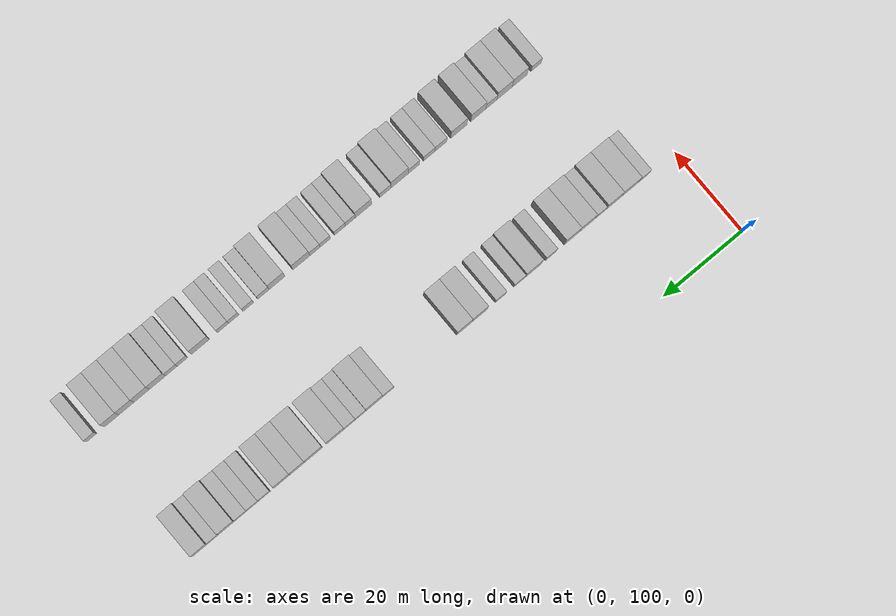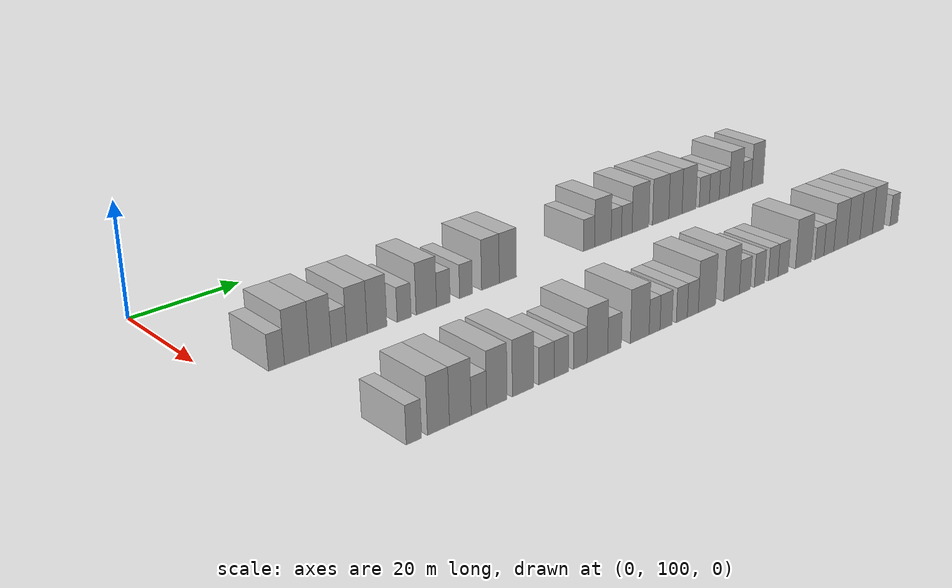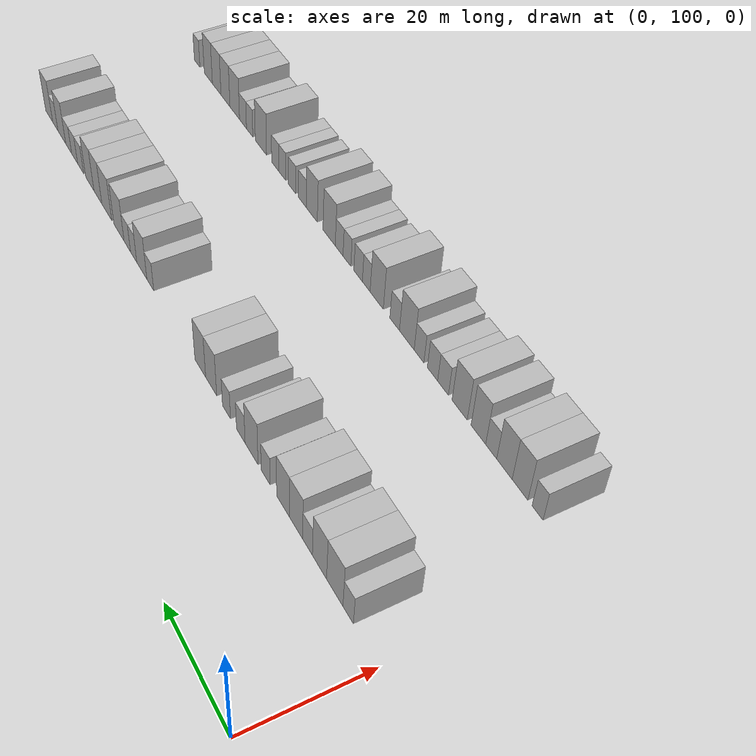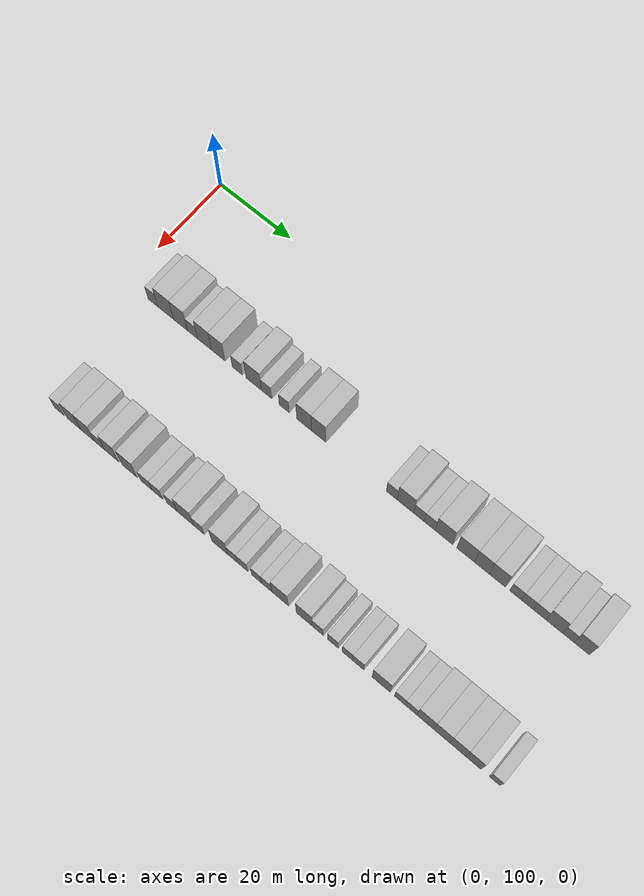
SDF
<sdf version="1.6">
 <world name="default">
  <model name="building_86">
   <static>1</static>
   <pose>25.0000 107.9559 0 0.000000 0.000000 0.000000</pose>
   <link name="link">
    <pose>0 0 3.00 0 0 0</pose>
    <collision name="collision"><geometry><box><size>10.0000 2.7515 6.0000</size></box></geometry></collision>
    <visual name="visual">
     <cast_shadows>0</cast_shadows>
     <geometry><box><size>10.0000 2.7515 6.0000</size></box></geometry>
     <material>
      <script>
       <uri>model://HANNAS_wall/materials/scripts</uri>
       <uri>model://HANNAS_wall/materials/textures</uri>
       <name>vrc/HANNAS_wall</name>
      </script>
     </material>
    </visual>
   </link>
  </model>
  <model name="building_87">
   <static>1</static>
   <pose>25.0000 111.5429 0 0.000000 0.000000 0.000000</pose>
   <link name="link">
    <pose>0 0 4.50 0 0 0</pose>
    <collision name="collision"><geometry><box><size>10.0000 4.4225 9.0000</size></box></geometry></collision>
    <visual name="visual">
     <cast_shadows>0</cast_shadows>
     <geometry><box><size>10.0000 4.4225 9.0000</size></box></geometry>
     <material>
      <script>
       <uri>model://HANNAS_wall/materials/scripts</uri>
       <uri>model://HANNAS_wall/materials/textures</uri>
       <name>vrc/HANNAS_wall</name>
      </script>
     </material>
    </visual>
   </link>
  </model>
  <model name="building_88">
   <static>1</static>
   <pose>25.0000 115.7220 0 0.000000 0.000000 0.000000</pose>
   <link name="link">
    <pose>0 0 4.50 0 0 0</pose>
    <collision name="collision"><geometry><box><size>10.0000 3.9358 9.0000</size></box></geometry></collision>
    <visual name="visual">
     <cast_shadows>0</cast_shadows>
     <geometry><box><size>10.0000 3.9358 9.0000</size></box></geometry>
     <material>
      <script>
       <uri>model://HANNAS_wall/materials/scripts</uri>
       <uri>model://HANNAS_wall/materials/textures</uri>
       <name>vrc/HANNAS_wall</name>
      </script>
     </material>
    </visual>
   </link>
  </model>
  <model name="building_89">
   <static>1</static>
   <pose>25.0000 119.0922 0 0.000000 0.000000 0.000000</pose>
   <link name="link">
    <pose>0 0 3.00 0 0 0</pose>
    <collision name="collision"><geometry><box><size>10.0000 2.8045 6.0000</size></box></geometry></collision>
    <visual name="visual">
     <cast_shadows>0</cast_shadows>
     <geometry><box><size>10.0000 2.8045 6.0000</size></box></geometry>
     <material>
      <script>
       <uri>model://HANNAS_wall/materials/scripts</uri>
       <uri>model://HANNAS_wall/materials/textures</uri>
       <name>vrc/HANNAS_wall</name>
      </script>
     </material>
    </visual>
   </link>
  </model>
  <model name="building_90">
   <static>1</static>
   <pose>25.0000 122.4397 0 0.000000 0.000000 0.000000</pose>
   <link name="link">
    <pose>0 0 4.50 0 0 0</pose>
    <collision name="collision"><geometry><box><size>10.0000 3.8905 9.0000</size></box></geometry></collision>
    <visual name="visual">
     <cast_shadows>0</cast_shadows>
     <geometry><box><size>10.0000 3.8905 9.0000</size></box></geometry>
     <material>
      <script>
       <uri>model://HANNAS_wall/materials/scripts</uri>
       <uri>model://HANNAS_wall/materials/textures</uri>
       <name>vrc/HANNAS_wall</name>
      </script>
     </material>
    </visual>
   </link>
  </model>
  <model name="building_91">
   <static>1</static>
   <pose>25.0000 126.2762 0 0.000000 0.000000 0.000000</pose>
   <link name="link">
    <pose>0 0 4.50 0 0 0</pose>
    <collision name="collision"><geometry><box><size>10.0000 3.7825 9.0000</size></box></geometry></collision>
    <visual name="visual">
     <cast_shadows>0</cast_shadows>
     <geometry><box><size>10.0000 3.7825 9.0000</size></box></geometry>
     <material>
      <script>
       <uri>model://HANNAS_wall/materials/scripts</uri>
       <uri>model://HANNAS_wall/materials/textures</uri>
       <name>vrc/HANNAS_wall</name>
      </script>
     </material>
    </visual>
   </link>
  </model>
  <model name="building_92">
   <static>1</static>
   <pose>25.0000 131.5565 0 0.000000 0.000000 0.000000</pose>
   <link name="link">
    <pose>0 0 3.00 0 0 0</pose>
    <collision name="collision"><geometry><box><size>10.0000 2.7782 6.0000</size></box></geometry></collision>
    <visual name="visual">
     <cast_shadows>0</cast_shadows>
     <geometry><box><size>10.0000 2.7782 6.0000</size></box></geometry>
     <material>
      <script>
       <uri>model://HANNAS_wall/materials/scripts</uri>
       <uri>model://HANNAS_wall/materials/textures</uri>
       <name>vrc/HANNAS_wall</name>
      </script>
     </material>
    </visual>
   </link>
  </model>
  <model name="building_93">
   <static>1</static>
   <pose>25.0000 136.0225 0 0.000000 0.000000 0.000000</pose>
   <link name="link">
    <pose>0 0 4.50 0 0 0</pose>
    <collision name="collision"><geometry><box><size>10.0000 4.1538 9.0000</size></box></geometry></collision>
    <visual name="visual">
     <cast_shadows>0</cast_shadows>
     <geometry><box><size>10.0000 4.1538 9.0000</size></box></geometry>
     <material>
      <script>
       <uri>model://HANNAS_wall/materials/scripts</uri>
       <uri>model://HANNAS_wall/materials/textures</uri>
       <name>vrc/HANNAS_wall</name>
      </script>
     </material>
    </visual>
   </link>
  </model>
  <model name="building_94">
   <static>1</static>
   <pose>25.0000 139.5104 0 0.000000 0.000000 0.000000</pose>
   <link name="link">
    <pose>0 0 3.00 0 0 0</pose>
    <collision name="collision"><geometry><box><size>10.0000 2.8219 6.0000</size></box></geometry></collision>
    <visual name="visual">
     <cast_shadows>0</cast_shadows>
     <geometry><box><size>10.0000 2.8219 6.0000</size></box></geometry>
     <material>
      <script>
       <uri>model://HANNAS_wall/materials/scripts</uri>
       <uri>model://HANNAS_wall/materials/textures</uri>
       <name>vrc/HANNAS_wall</name>
      </script>
     </material>
    </visual>
   </link>
  </model>
  <model name="building_95">
   <static>1</static>
   <pose>25.0000 144.2743 0 0.000000 0.000000 0.000000</pose>
   <link name="link">
    <pose>0 0 3.00 0 0 0</pose>
    <collision name="collision"><geometry><box><size>10.0000 2.7059 6.0000</size></box></geometry></collision>
    <visual name="visual">
     <cast_shadows>0</cast_shadows>
     <geometry><box><size>10.0000 2.7059 6.0000</size></box></geometry>
     <material>
      <script>
       <uri>model://HANNAS_wall/materials/scripts</uri>
       <uri>model://HANNAS_wall/materials/textures</uri>
       <name>vrc/HANNAS_wall</name>
      </script>
     </material>
    </visual>
   </link>
  </model>
  <model name="building_96">
   <static>1</static>
   <pose>25.0000 149.5697 0 0.000000 0.000000 0.000000</pose>
   <link name="link">
    <pose>0 0 4.50 0 0 0</pose>
    <collision name="collision"><geometry><box><size>10.0000 3.8850 9.0000</size></box></geometry></collision>
    <visual name="visual">
     <cast_shadows>0</cast_shadows>
     <geometry><box><size>10.0000 3.8850 9.0000</size></box></geometry>
     <material>
      <script>
       <uri>model://HANNAS_wall/materials/scripts</uri>
       <uri>model://HANNAS_wall/materials/textures</uri>
       <name>vrc/HANNAS_wall</name>
      </script>
     </material>
    </visual>
   </link>
  </model>
  <model name="building_97">
   <static>1</static>
   <pose>25.0000 153.4449 0 0.000000 0.000000 0.000000</pose>
   <link name="link">
    <pose>0 0 4.50 0 0 0</pose>
    <collision name="collision"><geometry><box><size>10.0000 3.8653 9.0000</size></box></geometry></collision>
    <visual name="visual">
     <cast_shadows>0</cast_shadows>
     <geometry><box><size>10.0000 3.8653 9.0000</size></box></geometry>
     <material>
      <script>
       <uri>model://HANNAS_wall/materials/scripts</uri>
       <uri>model://HANNAS_wall/materials/textures</uri>
       <name>vrc/HANNAS_wall</name>
      </script>
     </material>
    </visual>
   </link>
  </model>
  <model name="building_98">
   <static>1</static>
   <pose>25.0000 172.5586 0 0.000000 0.000000 0.000000</pose>
   <link name="link">
    <pose>0 0 3.00 0 0 0</pose>
    <collision name="collision"><geometry><box><size>10.0000 2.7874 6.0000</size></box></geometry></collision>
    <visual name="visual">
     <cast_shadows>0</cast_shadows>
     <geometry><box><size>10.0000 2.7874 6.0000</size></box></geometry>
     <material>
      <script>
       <uri>model://HANNAS_wall/materials/scripts</uri>
       <uri>model://HANNAS_wall/materials/textures</uri>
       <name>vrc/HANNAS_wall</name>
      </script>
     </material>
    </visual>
   </link>
  </model>
  <model name="building_99">
   <static>1</static>
   <pose>25.0000 176.0475 0 0.000000 0.000000 0.000000</pose>
   <link name="link">
    <pose>0 0 4.50 0 0 0</pose>
    <collision name="collision"><geometry><box><size>10.0000 4.1904 9.0000</size></box></geometry></collision>
    <visual name="visual">
     <cast_shadows>0</cast_shadows>
     <geometry><box><size>10.0000 4.1904 9.0000</size></box></geometry>
     <material>
      <script>
       <uri>model://HANNAS_wall/materials/scripts</uri>
       <uri>model://HANNAS_wall/materials/textures</uri>
       <name>vrc/HANNAS_wall</name>
      </script>
     </material>
    </visual>
   </link>
  </model>
  <model name="building_100">
   <static>1</static>
   <pose>25.0000 179.4709 0 0.000000 0.000000 0.000000</pose>
   <link name="link">
    <pose>0 0 3.00 0 0 0</pose>
    <collision name="collision"><geometry><box><size>10.0000 2.6563 6.0000</size></box></geometry></collision>
    <visual name="visual">
     <cast_shadows>0</cast_shadows>
     <geometry><box><size>10.0000 2.6563 6.0000</size></box></geometry>
     <material>
      <script>
       <uri>model://HANNAS_wall/materials/scripts</uri>
       <uri>model://HANNAS_wall/materials/textures</uri>
       <name>vrc/HANNAS_wall</name>
      </script>
     </material>
    </visual>
   </link>
  </model>
  <model name="building_101">
   <static>1</static>
   <pose>25.0000 182.1875 0 0.000000 0.000000 0.000000</pose>
   <link name="link">
    <pose>0 0 3.00 0 0 0</pose>
    <collision name="collision"><geometry><box><size>10.0000 2.7770 6.0000</size></box></geometry></collision>
    <visual name="visual">
     <cast_shadows>0</cast_shadows>
     <geometry><box><size>10.0000 2.7770 6.0000</size></box></geometry>
     <material>
      <script>
       <uri>model://HANNAS_wall/materials/scripts</uri>
       <uri>model://HANNAS_wall/materials/textures</uri>
       <name>vrc/HANNAS_wall</name>
      </script>
     </material>
    </visual>
   </link>
  </model>
  <model name="building_102">
   <static>1</static>
   <pose>25.0000 185.7847 0 0.000000 0.000000 0.000000</pose>
   <link name="link">
    <pose>0 0 4.50 0 0 0</pose>
    <collision name="collision"><geometry><box><size>10.0000 4.4173 9.0000</size></box></geometry></collision>
    <visual name="visual">
     <cast_shadows>0</cast_shadows>
     <geometry><box><size>10.0000 4.4173 9.0000</size></box></geometry>
     <material>
      <script>
       <uri>model://HANNAS_wall/materials/scripts</uri>
       <uri>model://HANNAS_wall/materials/textures</uri>
       <name>vrc/HANNAS_wall</name>
      </script>
     </material>
    </visual>
   </link>
  </model>
  <model name="building_103">
   <static>1</static>
   <pose>25.0000 191.2143 0 0.000000 0.000000 0.000000</pose>
   <link name="link">
    <pose>0 0 4.50 0 0 0</pose>
    <collision name="collision"><geometry><box><size>10.0000 4.4419 9.0000</size></box></geometry></collision>
    <visual name="visual">
     <cast_shadows>0</cast_shadows>
     <geometry><box><size>10.0000 4.4419 9.0000</size></box></geometry>
     <material>
      <script>
       <uri>model://HANNAS_wall/materials/scripts</uri>
       <uri>model://HANNAS_wall/materials/textures</uri>
       <name>vrc/HANNAS_wall</name>
      </script>
     </material>
    </visual>
   </link>
  </model>
  <model name="building_104">
   <static>1</static>
   <pose>25.0000 195.2744 0 0.000000 0.000000 0.000000</pose>
   <link name="link">
    <pose>0 0 4.50 0 0 0</pose>
    <collision name="collision"><geometry><box><size>10.0000 3.6783 9.0000</size></box></geometry></collision>
    <visual name="visual">
     <cast_shadows>0</cast_shadows>
     <geometry><box><size>10.0000 3.6783 9.0000</size></box></geometry>
     <material>
      <script>
       <uri>model://HANNAS_wall/materials/scripts</uri>
       <uri>model://HANNAS_wall/materials/textures</uri>
       <name>vrc/HANNAS_wall</name>
      </script>
     </material>
    </visual>
   </link>
  </model>
  <model name="building_105">
   <static>1</static>
   <pose>25.0000 199.0758 0 0.000000 0.000000 0.000000</pose>
   <link name="link">
    <pose>0 0 4.50 0 0 0</pose>
    <collision name="collision"><geometry><box><size>10.0000 3.9245 9.0000</size></box></geometry></collision>
    <visual name="visual">
     <cast_shadows>0</cast_shadows>
     <geometry><box><size>10.0000 3.9245 9.0000</size></box></geometry>
     <material>
      <script>
       <uri>model://HANNAS_wall/materials/scripts</uri>
       <uri>model://HANNAS_wall/materials/textures</uri>
       <name>vrc/HANNAS_wall</name>
      </script>
     </material>
    </visual>
   </link>
  </model>
  <model name="building_106">
   <static>1</static>
   <pose>25.0000 203.4934 0 0.000000 0.000000 0.000000</pose>
   <link name="link">
    <pose>0 0 3.00 0 0 0</pose>
    <collision name="collision"><geometry><box><size>10.0000 2.9106 6.0000</size></box></geometry></collision>
    <visual name="visual">
     <cast_shadows>0</cast_shadows>
     <geometry><box><size>10.0000 2.9106 6.0000</size></box></geometry>
     <material>
      <script>
       <uri>model://HANNAS_wall/materials/scripts</uri>
       <uri>model://HANNAS_wall/materials/textures</uri>
       <name>vrc/HANNAS_wall</name>
      </script>
     </material>
    </visual>
   </link>
  </model>
  <model name="building_107">
   <static>1</static>
   <pose>25.0000 206.4022 0 0.000000 0.000000 0.000000</pose>
   <link name="link">
    <pose>0 0 3.00 0 0 0</pose>
    <collision name="collision"><geometry><box><size>10.0000 2.9070 6.0000</size></box></geometry></collision>
    <visual name="visual">
     <cast_shadows>0</cast_shadows>
     <geometry><box><size>10.0000 2.9070 6.0000</size></box></geometry>
     <material>
      <script>
       <uri>model://HANNAS_wall/materials/scripts</uri>
       <uri>model://HANNAS_wall/materials/textures</uri>
       <name>vrc/HANNAS_wall</name>
      </script>
     </material>
    </visual>
   </link>
  </model>
  <model name="building_108">
   <static>1</static>
   <pose>25.0000 209.3434 0 0.000000 0.000000 0.000000</pose>
   <link name="link">
    <pose>0 0 3.00 0 0 0</pose>
    <collision name="collision"><geometry><box><size>10.0000 2.9755 6.0000</size></box></geometry></collision>
    <visual name="visual">
     <cast_shadows>0</cast_shadows>
     <geometry><box><size>10.0000 2.9755 6.0000</size></box></geometry>
     <material>
      <script>
       <uri>model://HANNAS_wall/materials/scripts</uri>
       <uri>model://HANNAS_wall/materials/textures</uri>
       <name>vrc/HANNAS_wall</name>
      </script>
     </material>
    </visual>
   </link>
  </model>
  <model name="building_109">
   <static>1</static>
   <pose>25.0000 212.8190 0 0.000000 0.000000 0.000000</pose>
   <link name="link">
    <pose>0 0 4.50 0 0 0</pose>
    <collision name="collision"><geometry><box><size>10.0000 3.9757 9.0000</size></box></geometry></collision>
    <visual name="visual">
     <cast_shadows>0</cast_shadows>
     <geometry><box><size>10.0000 3.9757 9.0000</size></box></geometry>
     <material>
      <script>
       <uri>model://HANNAS_wall/materials/scripts</uri>
       <uri>model://HANNAS_wall/materials/textures</uri>
       <name>vrc/HANNAS_wall</name>
      </script>
     </material>
    </visual>
   </link>
  </model>
  <model name="building_110">
   <static>1</static>
   <pose>25.0000 216.1886 0 0.000000 0.000000 0.000000</pose>
   <link name="link">
    <pose>0 0 3.00 0 0 0</pose>
    <collision name="collision"><geometry><box><size>10.0000 2.7635 6.0000</size></box></geometry></collision>
    <visual name="visual">
     <cast_shadows>0</cast_shadows>
     <geometry><box><size>10.0000 2.7635 6.0000</size></box></geometry>
     <material>
      <script>
       <uri>model://HANNAS_wall/materials/scripts</uri>
       <uri>model://HANNAS_wall/materials/textures</uri>
       <name>vrc/HANNAS_wall</name>
      </script>
     </material>
    </visual>
   </link>
  </model>
  <model name="building_111">
   <static>1</static>
   <pose>25.0000 219.4188 0 0.000000 0.000000 0.000000</pose>
   <link name="link">
    <pose>0 0 4.50 0 0 0</pose>
    <collision name="collision"><geometry><box><size>10.0000 3.6969 9.0000</size></box></geometry></collision>
    <visual name="visual">
     <cast_shadows>0</cast_shadows>
     <geometry><box><size>10.0000 3.6969 9.0000</size></box></geometry>
     <material>
      <script>
       <uri>model://HANNAS_wall/materials/scripts</uri>
       <uri>model://HANNAS_wall/materials/textures</uri>
       <name>vrc/HANNAS_wall</name>
      </script>
     </material>
    </visual>
   </link>
  </model>
  <model name="building_196">
   <static>1</static>
   <pose>55.0000 109.9472 0 0.000000 0.000000 0.000000</pose>
   <link name="link">
    <pose>0 0 3.00 0 0 0</pose>
    <collision name="collision"><geometry><box><size>10.0000 2.5874 6.0000</size></box></geometry></collision>
    <visual name="visual">
     <cast_shadows>0</cast_shadows>
     <geometry><box><size>10.0000 2.5874 6.0000</size></box></geometry>
     <material>
      <script>
       <uri>model://HANNAS_wall/materials/scripts</uri>
       <uri>model://HANNAS_wall/materials/textures</uri>
       <name>vrc/HANNAS_wall</name>
      </script>
     </material>
    </visual>
   </link>
  </model>
  <model name="building_197">
   <static>1</static>
   <pose>55.0000 114.1457 0 0.000000 0.000000 0.000000</pose>
   <link name="link">
    <pose>0 0 4.50 0 0 0</pose>
    <collision name="collision"><geometry><box><size>10.0000 3.8095 9.0000</size></box></geometry></collision>
    <visual name="visual">
     <cast_shadows>0</cast_shadows>
     <geometry><box><size>10.0000 3.8095 9.0000</size></box></geometry>
     <material>
      <script>
       <uri>model://HANNAS_wall/materials/scripts</uri>
       <uri>model://HANNAS_wall/materials/textures</uri>
       <name>vrc/HANNAS_wall</name>
      </script>
     </material>
    </visual>
   </link>
  </model>
  <model name="building_198">
   <static>1</static>
   <pose>55.0000 117.9830 0 0.000000 0.000000 0.000000</pose>
   <link name="link">
    <pose>0 0 4.50 0 0 0</pose>
    <collision name="collision"><geometry><box><size>10.0000 3.8651 9.0000</size></box></geometry></collision>
    <visual name="visual">
     <cast_shadows>0</cast_shadows>
     <geometry><box><size>10.0000 3.8651 9.0000</size></box></geometry>
     <material>
      <script>
       <uri>model://HANNAS_wall/materials/scripts</uri>
       <uri>model://HANNAS_wall/materials/textures</uri>
       <name>vrc/HANNAS_wall</name>
      </script>
     </material>
    </visual>
   </link>
  </model>
  <model name="building_199">
   <static>1</static>
   <pose>55.0000 121.3220 0 0.000000 0.000000 0.000000</pose>
   <link name="link">
    <pose>0 0 3.00 0 0 0</pose>
    <collision name="collision"><geometry><box><size>10.0000 2.8130 6.0000</size></box></geometry></collision>
    <visual name="visual">
     <cast_shadows>0</cast_shadows>
     <geometry><box><size>10.0000 2.8130 6.0000</size></box></geometry>
     <material>
      <script>
       <uri>model://HANNAS_wall/materials/scripts</uri>
       <uri>model://HANNAS_wall/materials/textures</uri>
       <name>vrc/HANNAS_wall</name>
      </script>
     </material>
    </visual>
   </link>
  </model>
  <model name="building_200">
   <static>1</static>
   <pose>55.0000 124.6306 0 0.000000 0.000000 0.000000</pose>
   <link name="link">
    <pose>0 0 4.50 0 0 0</pose>
    <collision name="collision"><geometry><box><size>10.0000 3.8042 9.0000</size></box></geometry></collision>
    <visual name="visual">
     <cast_shadows>0</cast_shadows>
     <geometry><box><size>10.0000 3.8042 9.0000</size></box></geometry>
     <material>
      <script>
       <uri>model://HANNAS_wall/materials/scripts</uri>
       <uri>model://HANNAS_wall/materials/textures</uri>
       <name>vrc/HANNAS_wall</name>
      </script>
     </material>
    </visual>
   </link>
  </model>
  <model name="building_201">
   <static>1</static>
   <pose>55.0000 129.5823 0 0.000000 0.000000 0.000000</pose>
   <link name="link">
    <pose>0 0 4.50 0 0 0</pose>
    <collision name="collision"><geometry><box><size>10.0000 4.0993 9.0000</size></box></geometry></collision>
    <visual name="visual">
     <cast_shadows>0</cast_shadows>
     <geometry><box><size>10.0000 4.0993 9.0000</size></box></geometry>
     <material>
      <script>
       <uri>model://HANNAS_wall/materials/scripts</uri>
       <uri>model://HANNAS_wall/materials/textures</uri>
       <name>vrc/HANNAS_wall</name>
      </script>
     </material>
    </visual>
   </link>
  </model>
  <model name="building_202">
   <static>1</static>
   <pose>55.0000 134.1253 0 0.000000 0.000000 0.000000</pose>
   <link name="link">
    <pose>0 0 3.00 0 0 0</pose>
    <collision name="collision"><geometry><box><size>10.0000 2.9866 6.0000</size></box></geometry></collision>
    <visual name="visual">
     <cast_shadows>0</cast_shadows>
     <geometry><box><size>10.0000 2.9866 6.0000</size></box></geometry>
     <material>
      <script>
       <uri>model://HANNAS_wall/materials/scripts</uri>
       <uri>model://HANNAS_wall/materials/textures</uri>
       <name>vrc/HANNAS_wall</name>
      </script>
     </material>
    </visual>
   </link>
  </model>
  <model name="building_203">
   <static>1</static>
   <pose>55.0000 137.0734 0 0.000000 0.000000 0.000000</pose>
   <link name="link">
    <pose>0 0 3.00 0 0 0</pose>
    <collision name="collision"><geometry><box><size>10.0000 2.9096 6.0000</size></box></geometry></collision>
    <visual name="visual">
     <cast_shadows>0</cast_shadows>
     <geometry><box><size>10.0000 2.9096 6.0000</size></box></geometry>
     <material>
      <script>
       <uri>model://HANNAS_wall/materials/scripts</uri>
       <uri>model://HANNAS_wall/materials/textures</uri>
       <name>vrc/HANNAS_wall</name>
      </script>
     </material>
    </visual>
   </link>
  </model>
  <model name="building_204">
   <static>1</static>
   <pose>55.0000 140.9360 0 0.000000 0.000000 0.000000</pose>
   <link name="link">
    <pose>0 0 3.00 0 0 0</pose>
    <collision name="collision"><geometry><box><size>10.0000 2.8154 6.0000</size></box></geometry></collision>
    <visual name="visual">
     <cast_shadows>0</cast_shadows>
     <geometry><box><size>10.0000 2.8154 6.0000</size></box></geometry>
     <material>
      <script>
       <uri>model://HANNAS_wall/materials/scripts</uri>
       <uri>model://HANNAS_wall/materials/textures</uri>
       <name>vrc/HANNAS_wall</name>
      </script>
     </material>
    </visual>
   </link>
  </model>
  <model name="building_205">
   <static>1</static>
   <pose>55.0000 144.5296 0 0.000000 0.000000 0.000000</pose>
   <link name="link">
    <pose>0 0 4.50 0 0 0</pose>
    <collision name="collision"><geometry><box><size>10.0000 4.3719 9.0000</size></box></geometry></collision>
    <visual name="visual">
     <cast_shadows>0</cast_shadows>
     <geometry><box><size>10.0000 4.3719 9.0000</size></box></geometry>
     <material>
      <script>
       <uri>model://HANNAS_wall/materials/scripts</uri>
       <uri>model://HANNAS_wall/materials/textures</uri>
       <name>vrc/HANNAS_wall</name>
      </script>
     </material>
    </visual>
   </link>
  </model>
  <model name="building_206">
   <static>1</static>
   <pose>55.0000 148.1737 0 0.000000 0.000000 0.000000</pose>
   <link name="link">
    <pose>0 0 3.00 0 0 0</pose>
    <collision name="collision"><geometry><box><size>10.0000 2.9163 6.0000</size></box></geometry></collision>
    <visual name="visual">
     <cast_shadows>0</cast_shadows>
     <geometry><box><size>10.0000 2.9163 6.0000</size></box></geometry>
     <material>
      <script>
       <uri>model://HANNAS_wall/materials/scripts</uri>
       <uri>model://HANNAS_wall/materials/textures</uri>
       <name>vrc/HANNAS_wall</name>
      </script>
     </material>
    </visual>
   </link>
  </model>
  <model name="building_207">
   <static>1</static>
   <pose>55.0000 153.7142 0 0.000000 0.000000 0.000000</pose>
   <link name="link">
    <pose>0 0 4.50 0 0 0</pose>
    <collision name="collision"><geometry><box><size>10.0000 4.1648 9.0000</size></box></geometry></collision>
    <visual name="visual">
     <cast_shadows>0</cast_shadows>
     <geometry><box><size>10.0000 4.1648 9.0000</size></box></geometry>
     <material>
      <script>
       <uri>model://HANNAS_wall/materials/scripts</uri>
       <uri>model://HANNAS_wall/materials/textures</uri>
       <name>vrc/HANNAS_wall</name>
      </script>
     </material>
    </visual>
   </link>
  </model>
  <model name="building_208">
   <static>1</static>
   <pose>55.0000 157.0342 0 0.000000 0.000000 0.000000</pose>
   <link name="link">
    <pose>0 0 3.00 0 0 0</pose>
    <collision name="collision"><geometry><box><size>10.0000 2.4753 6.0000</size></box></geometry></collision>
    <visual name="visual">
     <cast_shadows>0</cast_shadows>
     <geometry><box><size>10.0000 2.4753 6.0000</size></box></geometry>
     <material>
      <script>
       <uri>model://HANNAS_wall/materials/scripts</uri>
       <uri>model://HANNAS_wall/materials/textures</uri>
       <name>vrc/HANNAS_wall</name>
      </script>
     </material>
    </visual>
   </link>
  </model>
  <model name="building_209">
   <static>1</static>
   <pose>55.0000 159.6562 0 0.000000 0.000000 0.000000</pose>
   <link name="link">
    <pose>0 0 3.00 0 0 0</pose>
    <collision name="collision"><geometry><box><size>10.0000 2.7688 6.0000</size></box></geometry></collision>
    <visual name="visual">
     <cast_shadows>0</cast_shadows>
     <geometry><box><size>10.0000 2.7688 6.0000</size></box></geometry>
     <material>
      <script>
       <uri>model://HANNAS_wall/materials/scripts</uri>
       <uri>model://HANNAS_wall/materials/textures</uri>
       <name>vrc/HANNAS_wall</name>
      </script>
     </material>
    </visual>
   </link>
  </model>
  <model name="building_210">
   <static>1</static>
   <pose>55.0000 163.3407 0 0.000000 0.000000 0.000000</pose>
   <link name="link">
    <pose>0 0 3.00 0 0 0</pose>
    <collision name="collision"><geometry><box><size>10.0000 2.6002 6.0000</size></box></geometry></collision>
    <visual name="visual">
     <cast_shadows>0</cast_shadows>
     <geometry><box><size>10.0000 2.6002 6.0000</size></box></geometry>
     <material>
      <script>
       <uri>model://HANNAS_wall/materials/scripts</uri>
       <uri>model://HANNAS_wall/materials/textures</uri>
       <name>vrc/HANNAS_wall</name>
      </script>
     </material>
    </visual>
   </link>
  </model>
  <model name="building_211">
   <static>1</static>
   <pose>55.0000 165.9485 0 0.000000 0.000000 0.000000</pose>
   <link name="link">
    <pose>0 0 3.00 0 0 0</pose>
    <collision name="collision"><geometry><box><size>10.0000 2.6155 6.0000</size></box></geometry></collision>
    <visual name="visual">
     <cast_shadows>0</cast_shadows>
     <geometry><box><size>10.0000 2.6155 6.0000</size></box></geometry>
     <material>
      <script>
       <uri>model://HANNAS_wall/materials/scripts</uri>
       <uri>model://HANNAS_wall/materials/textures</uri>
       <name>vrc/HANNAS_wall</name>
      </script>
     </material>
    </visual>
   </link>
  </model>
  <model name="building_212">
   <static>1</static>
   <pose>55.0000 169.3770 0 0.000000 0.000000 0.000000</pose>
   <link name="link">
    <pose>0 0 4.50 0 0 0</pose>
    <collision name="collision"><geometry><box><size>10.0000 4.2416 9.0000</size></box></geometry></collision>
    <visual name="visual">
     <cast_shadows>0</cast_shadows>
     <geometry><box><size>10.0000 4.2416 9.0000</size></box></geometry>
     <material>
      <script>
       <uri>model://HANNAS_wall/materials/scripts</uri>
       <uri>model://HANNAS_wall/materials/textures</uri>
       <name>vrc/HANNAS_wall</name>
      </script>
     </material>
    </visual>
   </link>
  </model>
  <model name="building_213">
   <static>1</static>
   <pose>55.0000 175.4785 0 0.000000 0.000000 0.000000</pose>
   <link name="link">
    <pose>0 0 4.50 0 0 0</pose>
    <collision name="collision"><geometry><box><size>10.0000 3.9614 9.0000</size></box></geometry></collision>
    <visual name="visual">
     <cast_shadows>0</cast_shadows>
     <geometry><box><size>10.0000 3.9614 9.0000</size></box></geometry>
     <material>
      <script>
       <uri>model://HANNAS_wall/materials/scripts</uri>
       <uri>model://HANNAS_wall/materials/textures</uri>
       <name>vrc/HANNAS_wall</name>
      </script>
     </material>
    </visual>
   </link>
  </model>
  <model name="building_214">
   <static>1</static>
   <pose>55.0000 178.8935 0 0.000000 0.000000 0.000000</pose>
   <link name="link">
    <pose>0 0 3.00 0 0 0</pose>
    <collision name="collision"><geometry><box><size>10.0000 2.8687 6.0000</size></box></geometry></collision>
    <visual name="visual">
     <cast_shadows>0</cast_shadows>
     <geometry><box><size>10.0000 2.8687 6.0000</size></box></geometry>
     <material>
      <script>
       <uri>model://HANNAS_wall/materials/scripts</uri>
       <uri>model://HANNAS_wall/materials/textures</uri>
       <name>vrc/HANNAS_wall</name>
      </script>
     </material>
    </visual>
   </link>
  </model>
  <model name="building_215">
   <static>1</static>
   <pose>55.0000 182.6767 0 0.000000 0.000000 0.000000</pose>
   <link name="link">
    <pose>0 0 3.00 0 0 0</pose>
    <collision name="collision"><geometry><box><size>10.0000 2.6977 6.0000</size></box></geometry></collision>
    <visual name="visual">
     <cast_shadows>0</cast_shadows>
     <geometry><box><size>10.0000 2.6977 6.0000</size></box></geometry>
     <material>
      <script>
       <uri>model://HANNAS_wall/materials/scripts</uri>
       <uri>model://HANNAS_wall/materials/textures</uri>
       <name>vrc/HANNAS_wall</name>
      </script>
     </material>
    </visual>
   </link>
  </model>
  <model name="building_216">
   <static>1</static>
   <pose>55.0000 186.3125 0 0.000000 0.000000 0.000000</pose>
   <link name="link">
    <pose>0 0 3.00 0 0 0</pose>
    <collision name="collision"><geometry><box><size>10.0000 2.5738 6.0000</size></box></geometry></collision>
    <visual name="visual">
     <cast_shadows>0</cast_shadows>
     <geometry><box><size>10.0000 2.5738 6.0000</size></box></geometry>
     <material>
      <script>
       <uri>model://HANNAS_wall/materials/scripts</uri>
       <uri>model://HANNAS_wall/materials/textures</uri>
       <name>vrc/HANNAS_wall</name>
      </script>
     </material>
    </visual>
   </link>
  </model>
  <model name="building_217">
   <static>1</static>
   <pose>55.0000 189.0023 0 0.000000 0.000000 0.000000</pose>
   <link name="link">
    <pose>0 0 3.00 0 0 0</pose>
    <collision name="collision"><geometry><box><size>10.0000 2.8058 6.0000</size></box></geometry></collision>
    <visual name="visual">
     <cast_shadows>0</cast_shadows>
     <geometry><box><size>10.0000 2.8058 6.0000</size></box></geometry>
     <material>
      <script>
       <uri>model://HANNAS_wall/materials/scripts</uri>
       <uri>model://HANNAS_wall/materials/textures</uri>
       <name>vrc/HANNAS_wall</name>
      </script>
     </material>
    </visual>
   </link>
  </model>
  <model name="building_218">
   <static>1</static>
   <pose>55.0000 194.6379 0 0.000000 0.000000 0.000000</pose>
   <link name="link">
    <pose>0 0 4.50 0 0 0</pose>
    <collision name="collision"><geometry><box><size>10.0000 4.4655 9.0000</size></box></geometry></collision>
    <visual name="visual">
     <cast_shadows>0</cast_shadows>
     <geometry><box><size>10.0000 4.4655 9.0000</size></box></geometry>
     <material>
      <script>
       <uri>model://HANNAS_wall/materials/scripts</uri>
       <uri>model://HANNAS_wall/materials/textures</uri>
       <name>vrc/HANNAS_wall</name>
      </script>
     </material>
    </visual>
   </link>
  </model>
  <model name="building_219">
   <static>1</static>
   <pose>55.0000 199.1669 0 0.000000 0.000000 0.000000</pose>
   <link name="link">
    <pose>0 0 3.00 0 0 0</pose>
    <collision name="collision"><geometry><box><size>10.0000 2.5924 6.0000</size></box></geometry></collision>
    <visual name="visual">
     <cast_shadows>0</cast_shadows>
     <geometry><box><size>10.0000 2.5924 6.0000</size></box></geometry>
     <material>
      <script>
       <uri>model://HANNAS_wall/materials/scripts</uri>
       <uri>model://HANNAS_wall/materials/textures</uri>
       <name>vrc/HANNAS_wall</name>
      </script>
     </material>
    </visual>
   </link>
  </model>
  <model name="building_220">
   <static>1</static>
   <pose>55.0000 201.8923 0 0.000000 0.000000 0.000000</pose>
   <link name="link">
    <pose>0 0 3.00 0 0 0</pose>
    <collision name="collision"><geometry><box><size>10.0000 2.8583 6.0000</size></box></geometry></collision>
    <visual name="visual">
     <cast_shadows>0</cast_shadows>
     <geometry><box><size>10.0000 2.8583 6.0000</size></box></geometry>
     <material>
      <script>
       <uri>model://HANNAS_wall/materials/scripts</uri>
       <uri>model://HANNAS_wall/materials/textures</uri>
       <name>vrc/HANNAS_wall</name>
      </script>
     </material>
    </visual>
   </link>
  </model>
  <model name="building_221">
   <static>1</static>
   <pose>55.0000 205.3383 0 0.000000 0.000000 0.000000</pose>
   <link name="link">
    <pose>0 0 4.50 0 0 0</pose>
    <collision name="collision"><geometry><box><size>10.0000 4.0339 9.0000</size></box></geometry></collision>
    <visual name="visual">
     <cast_shadows>0</cast_shadows>
     <geometry><box><size>10.0000 4.0339 9.0000</size></box></geometry>
     <material>
      <script>
       <uri>model://HANNAS_wall/materials/scripts</uri>
       <uri>model://HANNAS_wall/materials/textures</uri>
       <name>vrc/HANNAS_wall</name>
      </script>
     </material>
    </visual>
   </link>
  </model>
  <model name="building_222">
   <static>1</static>
   <pose>55.0000 209.2729 0 0.000000 0.000000 0.000000</pose>
   <link name="link">
    <pose>0 0 4.50 0 0 0</pose>
    <collision name="collision"><geometry><box><size>10.0000 3.8352 9.0000</size></box></geometry></collision>
    <visual name="visual">
     <cast_shadows>0</cast_shadows>
     <geometry><box><size>10.0000 3.8352 9.0000</size></box></geometry>
     <material>
      <script>
       <uri>model://HANNAS_wall/materials/scripts</uri>
       <uri>model://HANNAS_wall/materials/textures</uri>
       <name>vrc/HANNAS_wall</name>
      </script>
     </material>
    </visual>
   </link>
  </model>
  <model name="building_223">
   <static>1</static>
   <pose>55.0000 213.0774 0 0.000000 0.000000 0.000000</pose>
   <link name="link">
    <pose>0 0 4.50 0 0 0</pose>
    <collision name="collision"><geometry><box><size>10.0000 3.7739 9.0000</size></box></geometry></collision>
    <visual name="visual">
     <cast_shadows>0</cast_shadows>
     <geometry><box><size>10.0000 3.7739 9.0000</size></box></geometry>
     <material>
      <script>
       <uri>model://HANNAS_wall/materials/scripts</uri>
       <uri>model://HANNAS_wall/materials/textures</uri>
       <name>vrc/HANNAS_wall</name>
      </script>
     </material>
    </visual>
   </link>
  </model>
  <model name="building_224">
   <static>1</static>
   <pose>55.0000 216.7666 0 0.000000 0.000000 0.000000</pose>
   <link name="link">
    <pose>0 0 4.50 0 0 0</pose>
    <collision name="collision"><geometry><box><size>10.0000 3.6045 9.0000</size></box></geometry></collision>
    <visual name="visual">
     <cast_shadows>0</cast_shadows>
     <geometry><box><size>10.0000 3.6045 9.0000</size></box></geometry>
     <material>
      <script>
       <uri>model://HANNAS_wall/materials/scripts</uri>
       <uri>model://HANNAS_wall/materials/textures</uri>
       <name>vrc/HANNAS_wall</name>
      </script>
     </material>
    </visual>
   </link>
  </model>
  <model name="building_225">
   <static>1</static>
   <pose>55.0000 221.8254 0 0.000000 0.000000 0.000000</pose>
   <link name="link">
    <pose>0 0 3.00 0 0 0</pose>
    <collision name="collision"><geometry><box><size>10.0000 2.5131 6.0000</size></box></geometry></collision>
    <visual name="visual">
     <cast_shadows>0</cast_shadows>
     <geometry><box><size>10.0000 2.5131 6.0000</size></box></geometry>
     <material>
      <script>
       <uri>model://HANNAS_wall/materials/scripts</uri>
       <uri>model://HANNAS_wall/materials/textures</uri>
       <name>vrc/HANNAS_wall</name>
      </script>
     </material>
    </visual>
   </link>
  </model>
 </world>
</sdf>
